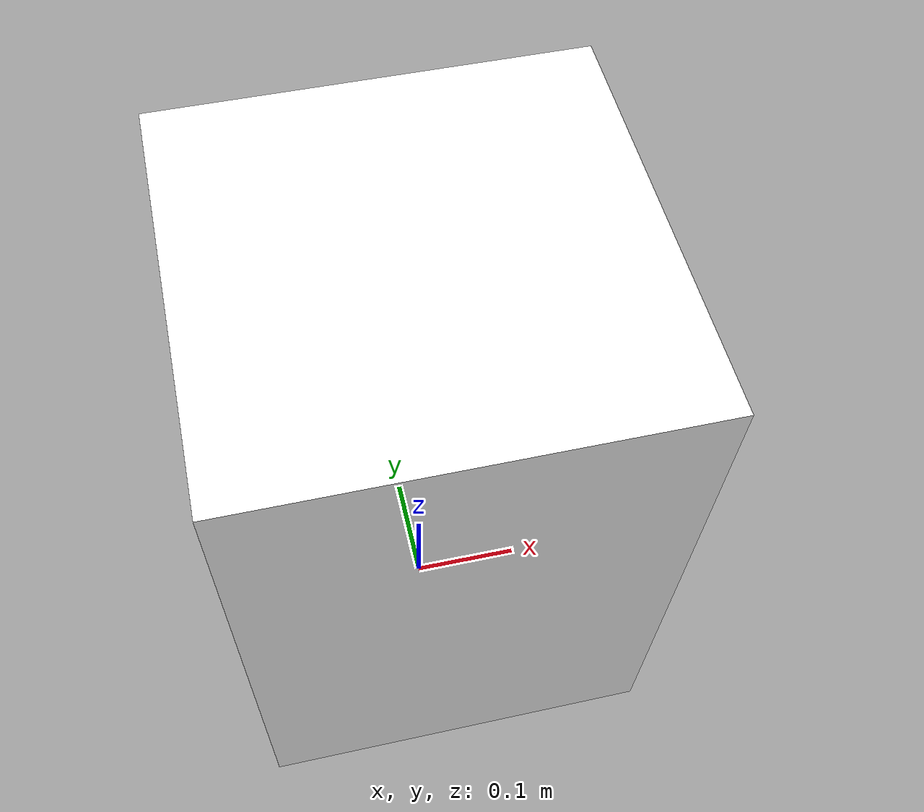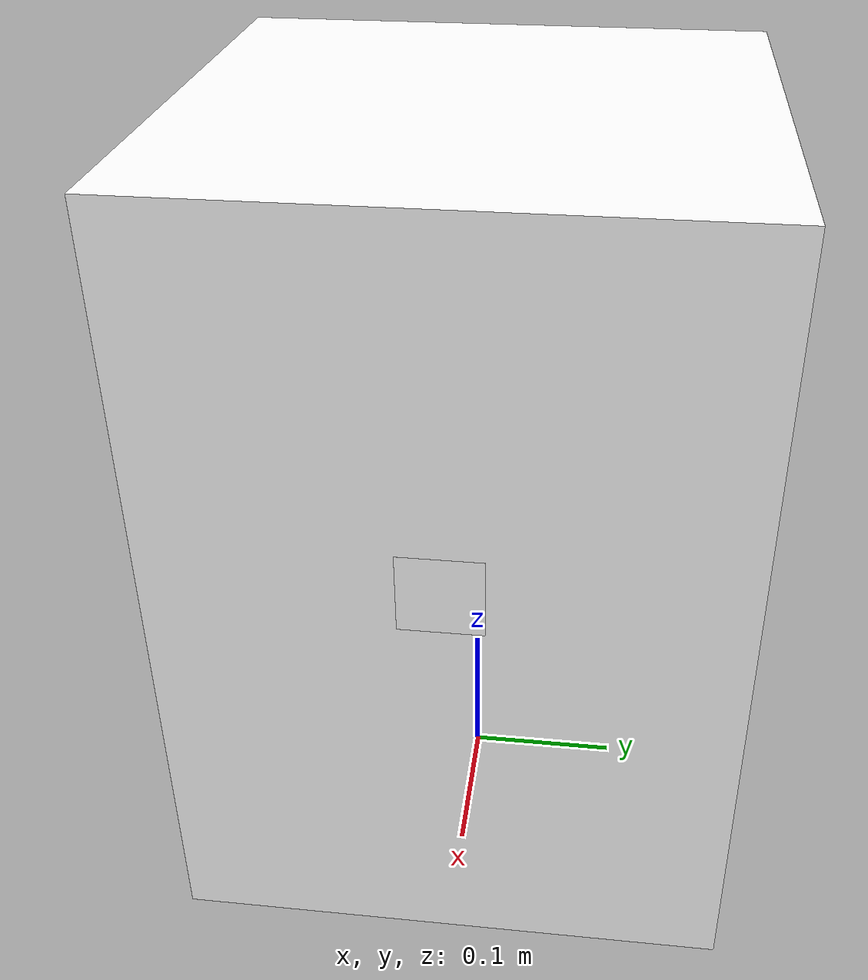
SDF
<?xml version="1.0" ?>
<sdf version="1.6">
  <model name="Charging Dock With ArUco">
    <static>true</static>
    <link name="docking_station_link">
      <pose>0.0 0.0 0.25 0 0 0</pose>
      <inertial>
        <mass>1.0</mass>
        <inertia> <!-- inertias are tricky to compute -->
          <ixx>0.083</ixx>       <!-- for a box: ixx = 0.083 * mass * (y*y + z*z) -->
          <ixy>0.0</ixy>         <!-- for a box: ixy = 0 -->
          <ixz>0.0</ixz>         <!-- for a box: ixz = 0 -->
          <iyy>0.083</iyy>       <!-- for a box: iyy = 0.083 * mass * (x*x + z*z) -->
          <iyz>0.0</iyz>         <!-- for a box: iyz = 0 -->
          <izz>0.083</izz>       <!-- for a box: izz = 0.083 * mass * (x*x + y*y) -->
        </inertia>
      </inertial>
      <collision name="docking_station_collision">
        <geometry>
          <box>
            <size>0.35 0.35 0.50</size>
          </box>
        </geometry>
      </collision>
      <visual name="docking_station_visual">
        <geometry>
          <box>
            <size>0.35 0.35 0.50</size>
          </box>
        </geometry>
        <material>
          <ambient>1.0 1.0 1.0 1</ambient>
          <diffuse>1.0 1.0 1.0 1</diffuse>
          <specular>0 0 0 0</specular>
          <emissive>0 0 0 1</emissive>
        </material>
      </visual>
     </link>
    <link name="aruco_marker_link">
      <pose>0.18 0.0 0.28 3.1415 1.5708 0</pose>
      <visual name='visual'>
        <geometry>
          <box>
            <size>0.05 0.05 1e-5</size>
          </box>
        </geometry>
        <material>
          <script>
            <uri>model://charging_dock_with_aruco/materials/scripts</uri>
            <uri>model://charging_dock_with_aruco/materials/textures</uri>
            <name>ArucoVisualMarker1/Marker</name>
          </script>
          <ambient>1 1 1 1</ambient>
          <diffuse>1 1 1 1</diffuse>
          <specular>0 0 0 1</specular>
          <emissive>1 1 1 0</emissive>
          <shader type='vertex'>
            <normal_map>__default__</normal_map>
          </shader>
        </material>
        <cast_shadows>1</cast_shadows>
        <transparency>0</transparency>
      </visual>
    </link>
  </model>
</sdf>
